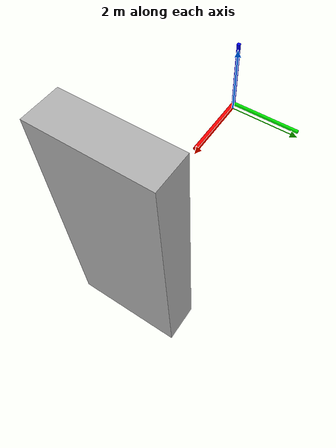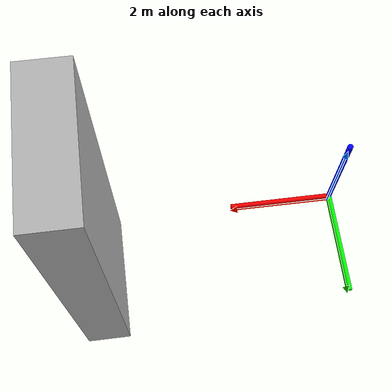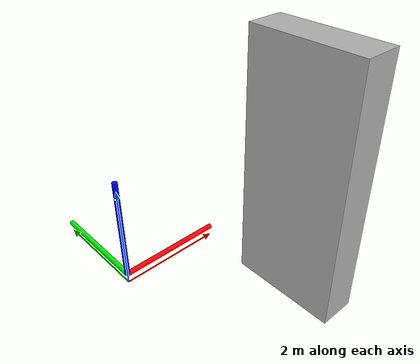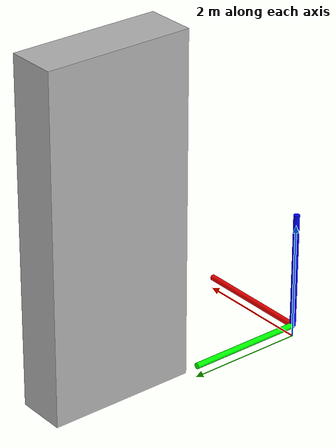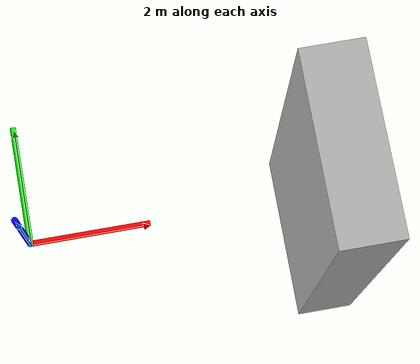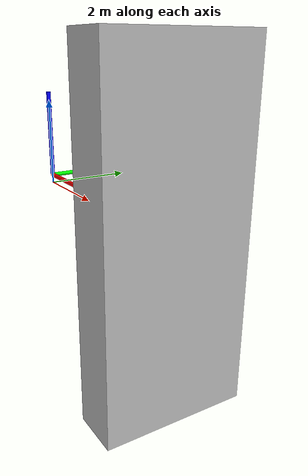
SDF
<sdf version="1.6">
 <world name="sand">
  <plugin filename="gz-sim-physics-system" name="gz::sim::systems::Physics"/>
  <plugin filename="gz-sim-user-commands-system" name="gz::sim::systems::UserCommands"/>
  <plugin filename="gz-sim-scene-broadcaster-system" name="gz::sim::systems::SceneBroadcaster"/>
  <plugin filename="gz-sim-sensors-system" name="gz::sim::systems::Sensors"/>
  <plugin filename="libgz-sim-imu-system.so" name="gz::sim::systems::Imu"/>
  <plugin filename="gz-sim-buoyancy-system" name="gz::sim::systems::Buoyancy">
   <graded_buoyancy>
    <default_density>1000</default_density>
    <density_change><above_depth>0</above_depth><density>1</density></density_change>
   </graded_buoyancy>
   <enable>orca4</enable>
  </plugin>
  <include><uri>https://fuel.gazebosim.org/1.0/OpenRobotics/models/Sun</uri></include>
  <include><uri>model://axes</uri><pose>0 0 0.2 0 0 0</pose></include>
  <model name="box">
   <pose>5 0 0 0 0 0</pose>
   <link name="box_link">
    <inertial>
     <inertia><ixx>0.16666</ixx><ixy>0</ixy><ixz>0</ixz><iyy>0.16666</iyy><iyz>0</iyz><izz>0.16666</izz></inertia>
     <mass>1</mass>
    </inertial>
    <collision name="box_collision"><geometry><box><size>1 3 7</size></box></geometry></collision>
    <visual name="box_visual">
     <geometry><box><size>1 3 7</size></box></geometry>
     <material>
      <ambient>0.300000012 0.300000012 0.300000012 1</ambient>
      <diffuse>0.699999988 0.699999988 0.699999988 1</diffuse>
      <specular>1 1 1 1</specular>
     </material>
    </visual>
   </link>
   <static>false</static>
  </model>
 </world>
</sdf>

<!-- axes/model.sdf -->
<sdf version='1.6'>
  <model name='axes'>
    <static>true</static>
    <pose>0 0 0 0 0 0</pose>

    <link name="x_axis">
      <visual name="x_visual">
        <pose degrees="true">1 0 0 90 0 90</pose>
        <geometry>
          <cylinder>
            <radius>0.05</radius>
            <length>2</length>
          </cylinder>
        </geometry>
        <material>
          <ambient>1 0 0 1</ambient>
          <diffuse>1 0 0 1</diffuse>
          <specular>1 0 0 1</specular>
        </material>
      </visual>
    </link>

    <link name="y_axis">
      <visual name="y_visual">
        <pose degrees="true">0 1 0 0 90 90</pose>
        <geometry>
          <cylinder>
            <radius>0.05</radius>
            <length>2</length>
          </cylinder>
        </geometry>
        <material>
          <ambient>0 1 0 1</ambient>
          <diffuse>0 1 0 1</diffuse>
          <specular>0 1 0 1</specular>
        </material>
      </visual>
    </link>

    <link name="z_axis">
      <visual name="z_visual">
        <pose degrees="true">0 0 1 0 0 0</pose>
        <geometry>
          <cylinder>
            <radius>0.05</radius>
            <length>2</length>
          </cylinder>
        </geometry>
        <material>
          <ambient>0 0 1 1</ambient>
          <diffuse>0 0 1 1</diffuse>
          <specular>0 0 1 1</specular>
        </material>
      </visual>
    </link>

  </model>
</sdf>
